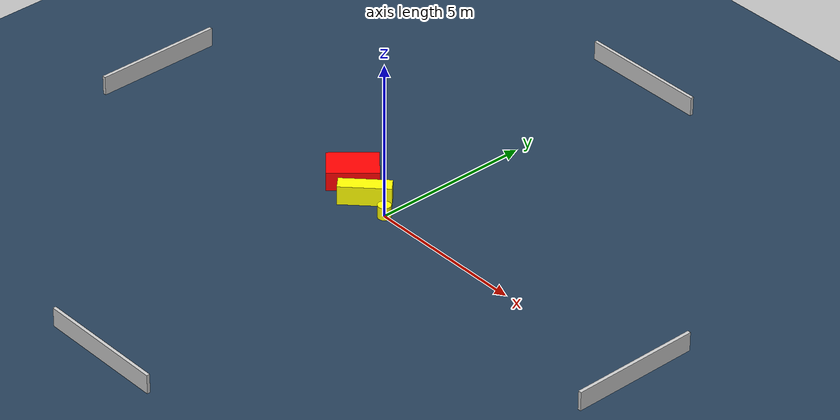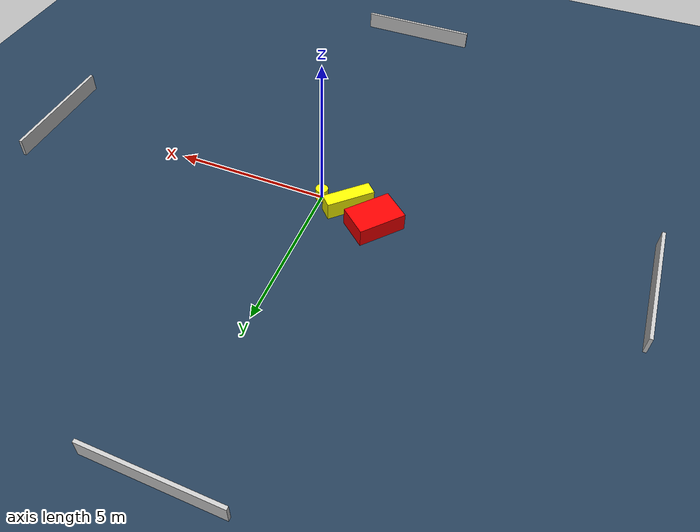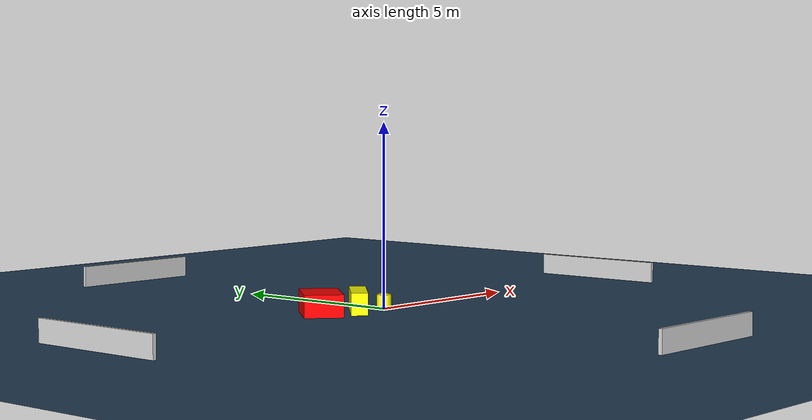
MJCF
<?xml version="1.0" ?>
<mujoco model="generated_environment">
  <option timestep="0.01" integrator="RK4" cone="elliptic"/>
  <default>
    <geom density="1"/>
  </default>
  <asset>
    <texture builtin="gradient" height="3072" name="skybox" rgb1="0.3 0.5 0.7" rgb2="0 0 0" type="skybox" width="512"/>
    <texture builtin="checker" height="300" name="groundplane" rgb1="0.2 0.3 0.4" rgb2="0.1 0.2 0.3" type="2d" width="300"/>
    <material name="groundplane" reflectance="0.2" texrepeat="5 5" texture="groundplane"/>
  </asset>
  <worldbody>
    <light dir="0 0 -1" directional="true" pos="0 0 1.5"/>
    <geom condim="3" friction="0.5 0.005 0.001" material="groundplane" name="floor" pos="0 0 0" size="0 0 0.05" type="plane"/>
    <body name="walls">
      <geom name="wall_1" condim="4" pos="-10.0 0.0 0.3" rgba="0.800000011920929 0.800000011920929 0.800000011920929 1.0" size="0.05 2.0 0.3" type="box"/>
      <geom name="wall_2" condim="4" pos="10.0 0.0 0.3" rgba="0.800000011920929 0.800000011920929 0.800000011920929 1.0" size="0.05 2.0 0.3" type="box"/>
      <geom name="wall_3" condim="4" pos="0.0 -10.0 0.3" rgba="0.800000011920929 0.800000011920929 0.800000011920929 1.0" size="2.0 0.05 0.3" type="box"/>
      <geom name="wall_4" condim="4" pos="0.0 10.0 0.3" rgba="0.800000011920929 0.800000011920929 0.800000011920929 1.0" size="2.0 0.05 0.3" type="box"/>
    </body>
    <body name="robot">
      <joint name="joint_x" type="slide" pos="0 0 0" axis="1 0 0"/>
      <joint name="joint_y" type="slide" pos="0 0 0" axis="0 1 0"/>
      <geom name="robot" type="cylinder" pos="0.0 0.0 0.2" size="0.2 0.2 0.0" mass="5.0" friction="1.0 0.005 0.0001" condim="4" rgba="1.0 1.0 0.0 1.0"/>
    </body>
    <body name="obstacle_1_movable">
      <geom name="obstacle_1_movable" condim="4" pos="-0.9274254884539596 0.09380365120832401 0.3" euler="0 0 314.3709404702582" friction="0.0 0.005 0.001" rgba="1.0 1.0 0.0 1.0" size="0.22330892249321144 0.7730845347673474 0.3" type="box" mass="0.1"/>
      <joint type="free"/>
    </body>
    <body name="obstacle_2_static">
      <geom name="obstacle_2_static" condim="4" pos="-1.928665073421199 0.5127649153594922 0.3" euler="0 0 319.2821606985592" friction="0.0 0.005 0.001" rgba="1.0 0.0 0.0 1.0" size="0.5187848662851007 0.7626184806588283 0.3" type="box"/>
    </body>
  </worldbody>
  <actuator>
    <motor name="actuator_x" joint="joint_x" gear="1" ctrlrange="-1 1"/>
    <motor name="actuator_y" joint="joint_y" gear="1" ctrlrange="-1 1"/>
  </actuator>
</mujoco>
